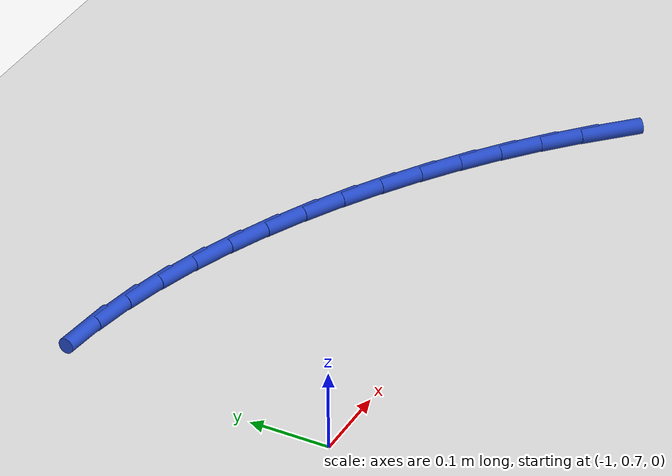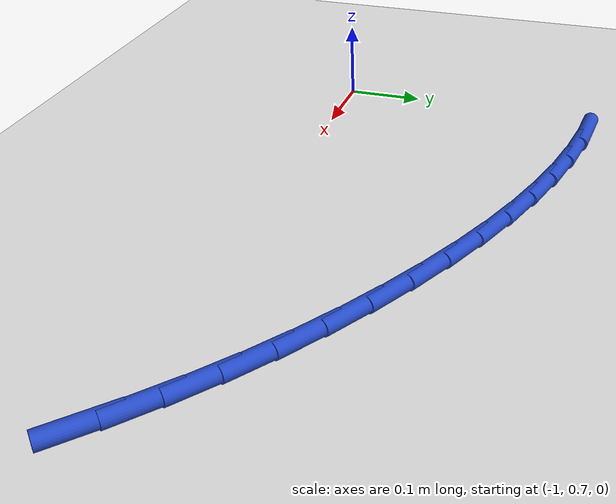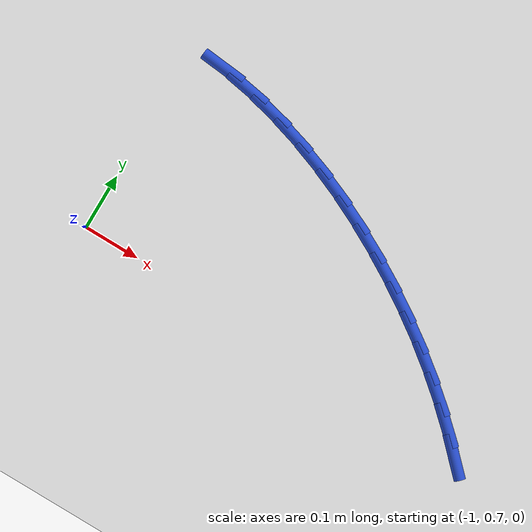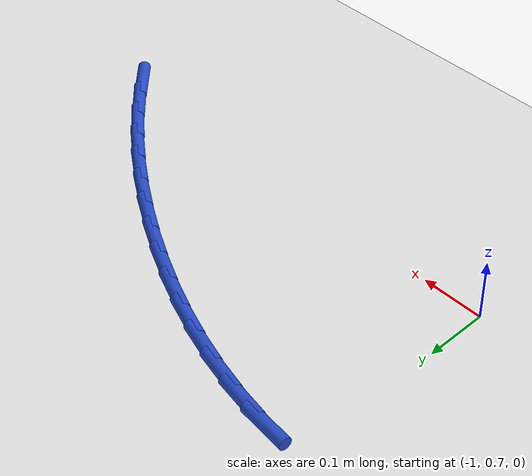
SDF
<sdf version="1.6">
 <world name="default">
  <model name="ground_plane">
   <static>1</static>
   <link name="link">
    <collision name="collision">
     <geometry><plane><normal>0 0 1</normal><size>100 100</size></plane></geometry>
     <surface><friction><ode><mu>100</mu><mu2>50</mu2></ode></friction></surface>
    </collision>
    <visual name="visual">
     <cast_shadows>0</cast_shadows>
     <geometry><plane><normal>0 0 1</normal><size>100 100</size></plane></geometry>
     <material>
      <script><uri>file://media/materials/scripts/gazebo.material</uri><name>Gazebo/WhiteGlow</name></script>
     </material>
    </visual>
   </link>
  </model>
  <model name="line">
   <link name="link_14">
    <pose>-0.276226381268178 0.6888884631995423 0.01 0 1.57 -0.7871354103645484</pose>
    <collision name="collision">
     <geometry><cylinder><radius>0.01</radius><length>0.08</length></cylinder></geometry>
    </collision>
    <visual name="visual">
     <material>
      <script><name>Gazebo/Blue</name><uri>file://media/materials/scripts/gazebo.material</uri></script>
     </material>
     <geometry><cylinder><radius>0.01</radius><length>0.08</length></cylinder></geometry>
    </visual>
   </link>
   <link name="link_15">
    <pose>-0.3145270366177483 0.727322425665292 0.01 0 1.57 -0.7396079056818027</pose>
    <collision name="collision">
     <geometry><cylinder><radius>0.01</radius><length>0.08</length></cylinder></geometry>
    </collision>
    <visual name="visual">
     <material>
      <script><name>Gazebo/Blue</name><uri>file://media/materials/scripts/gazebo.material</uri></script>
     </material>
     <geometry><cylinder><radius>0.01</radius><length>0.08</length></cylinder></geometry>
    </visual>
   </link>
   <link name="link_16">
    <pose>-0.3547561939538593 0.7640263339047233 0.01 0 1.57 -0.6937576245826671</pose>
    <collision name="collision">
     <geometry><cylinder><radius>0.01</radius><length>0.08</length></cylinder></geometry>
    </collision>
    <visual name="visual">
     <material>
      <script><name>Gazebo/Blue</name><uri>file://media/materials/scripts/gazebo.material</uri></script>
     </material>
     <geometry><cylinder><radius>0.01</radius><length>0.08</length></cylinder></geometry>
    </visual>
   </link>
   <link name="link_17">
    <pose>-0.3967899971452919 0.79898471436475 0.01 0 1.57 -0.6494975197454337</pose>
    <collision name="collision">
     <geometry><cylinder><radius>0.01</radius><length>0.08</length></cylinder></geometry>
    </collision>
    <visual name="visual">
     <material>
      <script><name>Gazebo/Blue</name><uri>file://media/materials/scripts/gazebo.material</uri></script>
     </material>
     <geometry><cylinder><radius>0.01</radius><length>0.08</length></cylinder></geometry>
    </visual>
   </link>
   <link name="link_18">
    <pose>-0.440504590060827 0.8321820934922863 0.01 0 1.57 -0.6067245039307995</pose>
    <collision name="collision">
     <geometry><cylinder><radius>0.01</radius><length>0.08</length></cylinder></geometry>
    </collision>
    <visual name="visual">
     <material>
      <script><name>Gazebo/Blue</name><uri>file://media/materials/scripts/gazebo.material</uri></script>
     </material>
     <geometry><cylinder><radius>0.01</radius><length>0.08</length></cylinder></geometry>
    </visual>
   </link>
   <link name="link_19">
    <pose>-0.48577611656924535 0.8636029977342468 0.01 0 1.57 -0.5653235341016788</pose>
    <collision name="collision">
     <geometry><cylinder><radius>0.01</radius><length>0.08</length></cylinder></geometry>
    </collision>
    <visual name="visual">
     <material>
      <script><name>Gazebo/Blue</name><uri>file://media/materials/scripts/gazebo.material</uri></script>
     </material>
     <geometry><cylinder><radius>0.01</radius><length>0.08</length></cylinder></geometry>
    </visual>
   </link>
   <link name="link_20">
    <pose>-0.532480720539328 0.8932319535375454 0.01 0 1.57 -0.524701802772072</pose>
    <collision name="collision">
     <geometry><cylinder><radius>0.01</radius><length>0.08</length></cylinder></geometry>
    </collision>
    <visual name="visual">
     <material>
      <script><name>Gazebo/Blue</name><uri>file://media/materials/scripts/gazebo.material</uri></script>
     </material>
     <geometry><cylinder><radius>0.01</radius><length>0.08</length></cylinder></geometry>
    </visual>
   </link>
   <link name="link_21">
    <pose>-0.5804914085548 0.9210215916690365 0.01 0 1.57 -0.4826144706357127</pose>
    <collision name="collision">
     <geometry><cylinder><radius>0.01</radius><length>0.08</length></cylinder></geometry>
    </collision>
    <visual name="visual">
     <material>
      <script><name>Gazebo/Blue</name><uri>file://media/materials/scripts/gazebo.material</uri></script>
     </material>
     <geometry><cylinder><radius>0.01</radius><length>0.08</length></cylinder></geometry>
    </visual>
   </link>
   <link name="link_22">
    <pose>-0.6296676501321932 0.9467869162673138 0.01 0 1.57 -0.4381531507439663</pose>
    <collision name="collision">
     <geometry><cylinder><radius>0.01</radius><length>0.08</length></cylinder></geometry>
    </collision>
    <visual name="visual">
     <material>
      <script><name>Gazebo/Blue</name><uri>file://media/materials/scripts/gazebo.material</uri></script>
     </material>
     <geometry><cylinder><radius>0.01</radius><length>0.08</length></cylinder></geometry>
    </visual>
   </link>
   <link name="link_23">
    <pose>-0.6798652644012166 0.970305819264666 0.01 0 1.57 -0.3909346204363536</pose>
    <collision name="collision">
     <geometry><cylinder><radius>0.01</radius><length>0.08</length></cylinder></geometry>
    </collision>
    <visual name="visual">
     <material>
      <script><name>Gazebo/Blue</name><uri>file://media/materials/scripts/gazebo.material</uri></script>
     </material>
     <geometry><cylinder><radius>0.01</radius><length>0.08</length></cylinder></geometry>
    </visual>
   </link>
   <link name="link_24">
    <pose>-0.7309400704370417 0.9913561920389319 0.01 0 1.57 -0.34057285058652814</pose>
    <collision name="collision">
     <geometry><cylinder><radius>0.01</radius><length>0.08</length></cylinder></geometry>
    </collision>
    <visual name="visual">
     <material>
      <script><name>Gazebo/Blue</name><uri>file://media/materials/scripts/gazebo.material</uri></script>
     </material>
     <geometry><cylinder><radius>0.01</radius><length>0.08</length></cylinder></geometry>
    </visual>
   </link>
   <link name="link_25">
    <pose>-0.7827478873148409 1.0097159259679507 0.01 0 1.57 -0.2866873402972248</pose>
    <collision name="collision">
     <geometry><cylinder><radius>0.01</radius><length>0.08</length></cylinder></geometry>
    </collision>
    <visual name="visual">
     <material>
      <script><name>Gazebo/Blue</name><uri>file://media/materials/scripts/gazebo.material</uri></script>
     </material>
     <geometry><cylinder><radius>0.01</radius><length>0.08</length></cylinder></geometry>
    </visual>
   </link>
   <link name="link_26">
    <pose>-0.8351445341097864 1.0251629124295611 0.01 0 1.57 -0.22891773448633887</pose>
    <collision name="collision">
     <geometry><cylinder><radius>0.01</radius><length>0.08</length></cylinder></geometry>
    </collision>
    <visual name="visual">
     <material>
      <script><name>Gazebo/Blue</name><uri>file://media/materials/scripts/gazebo.material</uri></script>
     </material>
     <geometry><cylinder><radius>0.01</radius><length>0.08</length></cylinder></geometry>
    </visual>
   </link>
   <link name="link_27">
    <pose>-0.8879858298970509 1.0374750428016033 0.01 0 1.57 -0.1669461732629906</pose>
    <collision name="collision">
     <geometry><cylinder><radius>0.01</radius><length>0.08</length></cylinder></geometry>
    </collision>
    <visual name="visual">
     <material>
      <script><name>Gazebo/Blue</name><uri>file://media/materials/scripts/gazebo.material</uri></script>
     </material>
     <geometry><cylinder><radius>0.01</radius><length>0.08</length></cylinder></geometry>
    </visual>
   </link>
   <link name="link_28">
    <pose>-0.9411275937518057 1.0464302084619153 0.01 0 1.57 -0.10052843975997904</pose>
    <collision name="collision">
     <geometry><cylinder><radius>0.01</radius><length>0.08</length></cylinder></geometry>
    </collision>
    <visual name="visual">
     <material>
      <script><name>Gazebo/Blue</name><uri>file://media/materials/scripts/gazebo.material</uri></script>
     </material>
     <geometry><cylinder><radius>0.01</radius><length>0.08</length></cylinder></geometry>
    </visual>
   </link>
  </model>
 </world>
</sdf>
